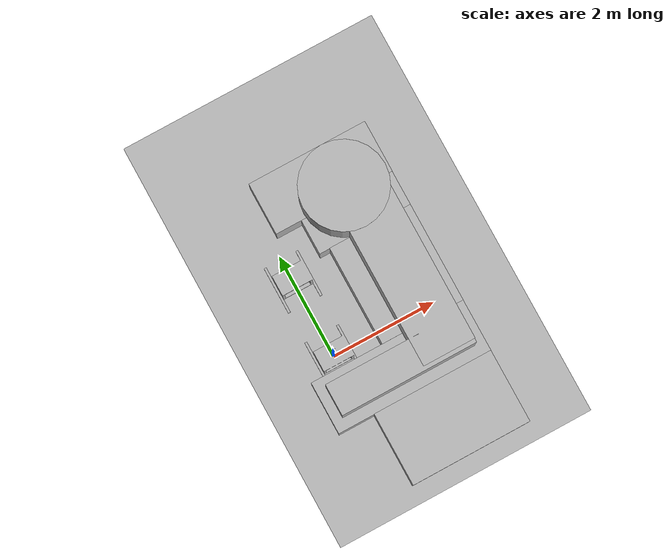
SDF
<sdf version="1.7">
 <world name="default">
  <model name="ground">
   <static>1</static>
   <link name="link">
    <pose>0 0 -0.005 0 -0 0</pose>
    <collision name="collision"><geometry><box><size>5 8 0.01</size></box></geometry></collision>
    <visual name="visual"><geometry><box><size>5 8 0.01</size></box></geometry></visual>
   </link>
   <pose>1 1.01151 0 0 -0 0</pose>
  </model>
  <light name="lab_light" type="directional">
   <pose>0.86 1.96 2.5 -1.55 0 0</pose>
   <diffuse>0.8 0.8 0.8 1</diffuse>
   <specular>0.2 0.2 0.2 1</specular>
   <attenuation>
    <range>20</range>
    <constant>0.9</constant>
    <linear>0.01</linear>
    <quadratic>0.001</quadratic>
   </attenuation>
   <direction>0 0 -1</direction>
   <spot><inner_angle>0</inner_angle><outer_angle>0</outer_angle><falloff>0</falloff></spot>
  </light>
  <model name="stand_small">
   <static>1</static>
   <link name="link">
    <inertial><mass>20</mass></inertial>
    <collision name="collision">
     <geometry><mesh><uri>model://stand_small/meshes/stand_small.STL</uri></mesh></geometry>
    </collision>
    <visual name="visual">
     <geometry><mesh><uri>model://stand_small/meshes/stand_small.STL</uri></mesh></geometry>
    </visual>
   </link>
   <pose>-0.338887 -0.447438 0 0 -0 0</pose>
  </model>
  <model name="stand_small_1">
   <static>1</static>
   <link name="link">
    <inertial><mass>20</mass></inertial>
    <collision name="collision">
     <geometry><mesh><uri>model://stand_small/meshes/stand_small.STL</uri></mesh></geometry>
    </collision>
    <visual name="visual">
     <geometry><mesh><uri>model://stand_small/meshes/stand_small.STL</uri></mesh></geometry>
    </visual>
   </link>
   <pose>-0.338887 1.04762 0 0 -0 0</pose>
  </model>
  <physics type="ode">
   <ode>
    <solver>
     <type>quick</type>
     <iters>100</iters>
     <precon_iters>0</precon_iters>
     <sor>1</sor>
     <use_dynamic_moi_rescaling>0</use_dynamic_moi_rescaling>
    </solver>
    <constraints>
     <cfm>0</cfm>
     <erp>0.5</erp>
     <contact_max_correcting_vel>1000</contact_max_correcting_vel>
     <contact_surface_layer>0</contact_surface_layer>
    </constraints>
   </ode>
   <real_time_update_rate>0</real_time_update_rate>
   <max_step_size>0.001</max_step_size>
   <real_time_factor>1</real_time_factor>
  </physics>
  <scene><ambient>0.4 0.4 0.4 1</ambient><background>0.7 0.7 1 1</background><shadows>1</shadows></scene>
  <gravity>0 0 -9.81</gravity>
  <magnetic_field>6e-06 2.3e-05 -4.2e-05</magnetic_field>
  <atmosphere type="adiabatic"/>
  <spherical_coordinates>
   <surface_model>EARTH_WGS84</surface_model>
   <latitude_deg>0</latitude_deg>
   <longitude_deg>0</longitude_deg>
   <elevation>0</elevation>
   <heading_deg>0</heading_deg>
  </spherical_coordinates>
  <model name="filling_line_box_1">
   <static>1</static>
   <link name="link">
    <pose>0 0 -0.005 0 -0 0</pose>
    <collision name="collision"><geometry><box><size>2.3 1 0.74</size></box></geometry></collision>
    <visual name="visual"><geometry><box><size>2.3 1 0.74</size></box></geometry></visual>
   </link>
   <pose>1.27366 2.80261 0.3742 0 -0 0</pose>
  </model>
  <model name="filling_line_box_2">
   <static>1</static>
   <link name="link">
    <pose>0 0 -0.005 0 -0 0</pose>
    <collision name="collision"><geometry><box><size>1.8 0.7 0.74</size></box></geometry></collision>
    <visual name="visual"><geometry><box><size>1.8 0.7 0.74</size></box></geometry></visual>
   </link>
   <pose>1.51903 1.98525 0.374135 0 -0 0</pose>
  </model>
  <model name="filling_line_box_3">
   <static>1</static>
   <link name="link">
    <pose>0 0 -0.005 0 -0 0</pose>
    <collision name="collision"><geometry><box><size>1.6 1.9 0.74</size></box></geometry></collision>
    <visual name="visual"><geometry><box><size>1.6 1.9 0.74</size></box></geometry></visual>
   </link>
   <pose>1.61841 0.693327 0.374135 0 -0 0</pose>
  </model>
  <model name="filling_line_box_4">
   <static>1</static>
   <link name="link">
    <pose>0 0 -0.005 0 -0 0</pose>
    <collision name="collision"><geometry><box><size>3 1 0.74</size></box></geometry></collision>
    <visual name="visual"><geometry><box><size>3 1 0.74</size></box></geometry></visual>
   </link>
   <pose>0.916904 -0.756443 0.368288 0 -0 0</pose>
  </model>
  <model name="filling_line_box_5">
   <static>1</static>
   <link name="link">
    <pose>0 0 -0.005 0 -0 0</pose>
    <collision name="collision"><geometry><box><size>2.3 1.4 0.74</size></box></geometry></collision>
    <visual name="visual"><geometry><box><size>2.3 1.4 0.74</size></box></geometry></visual>
   </link>
   <pose>1.26496 -1.949 0.368288 0 -0 0</pose>
  </model>
  <model name="laminar_flow_cylinder">
   <static>1</static>
   <link name="link">
    <collision name="collision">
     <geometry><cylinder><radius>0.8</radius><length>0.9</length></cylinder></geometry>
    </collision>
    <visual name="visual">
     <geometry><cylinder><radius>0.8</radius><length>0.9</length></cylinder></geometry>
    </visual>
   </link>
   <pose>1.51231 2.38498 1.18216 0 -0 0</pose>
  </model>
  <model name="laminar_flow_box_1">
   <static>1</static>
   <link name="link">
    <pose>0 0 -0.005 0 -0 0</pose>
    <collision name="collision"><geometry><box><size>1 3 0.9</size></box></geometry></collision>
    <visual name="visual"><geometry><box><size>1 3 0.9</size></box></geometry></visual>
   </link>
   <pose>1.71555 0.527298 1.18216 0 -0 0</pose>
  </model>
  <model name="laminar_flow_box_2">
   <static>1</static>
   <link name="link">
    <pose>0 0 -0.005 0 -0 0</pose>
    <collision name="collision"><geometry><box><size>2.6 0.6 0.9</size></box></geometry></collision>
    <visual name="visual"><geometry><box><size>2.6 0.6 0.9</size></box></geometry></visual>
   </link>
   <pose>0.904529 -0.746817 1.18216 0 -0 0</pose>
  </model>
 </world>
</sdf>
